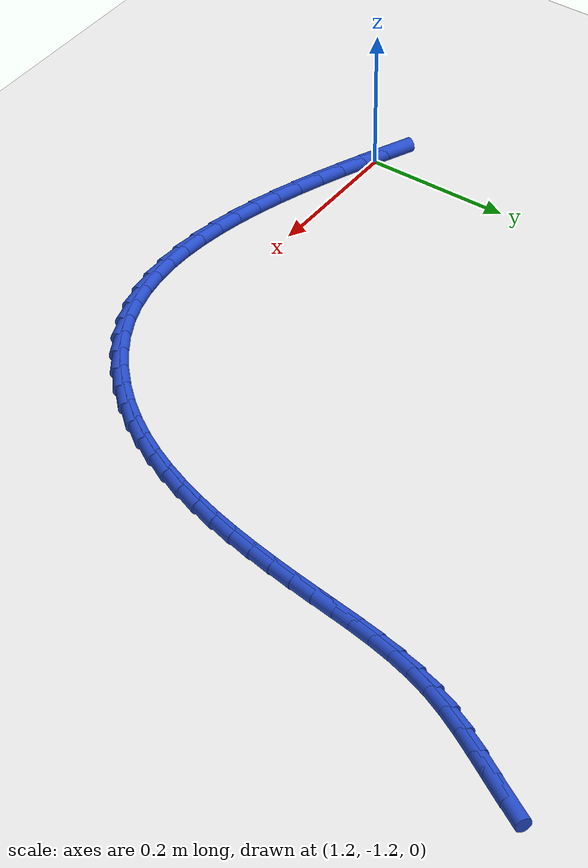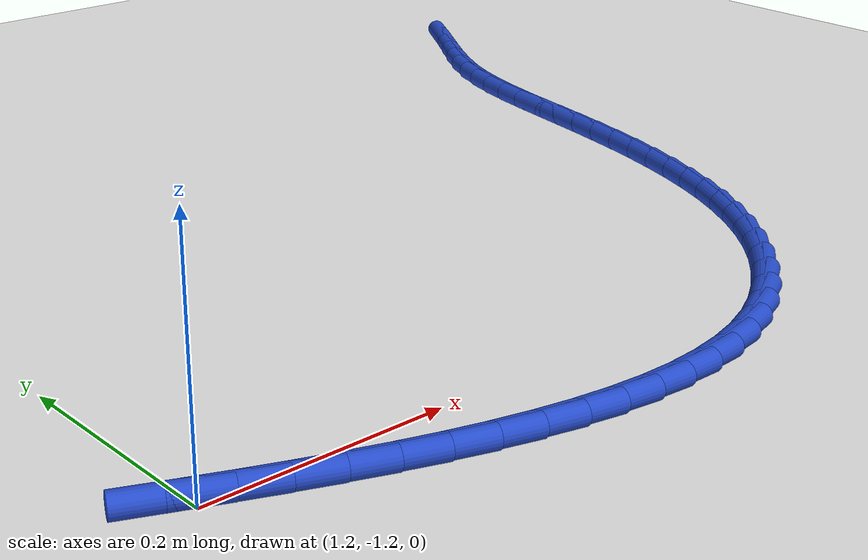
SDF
<sdf version="1.6">
 <world name="default">
  <model name="ground_plane">
   <static>1</static>
   <link name="link">
    <collision name="collision">
     <geometry><plane><normal>0 0 1</normal><size>100 100</size></plane></geometry>
     <surface><friction><ode><mu>100</mu><mu2>50</mu2></ode></friction></surface>
    </collision>
    <visual name="visual">
     <cast_shadows>0</cast_shadows>
     <geometry><plane><normal>0 0 1</normal><size>100 100</size></plane></geometry>
     <material>
      <script><uri>file://media/materials/scripts/gazebo.material</uri><name>Gazebo/WhiteGlow</name></script>
     </material>
    </visual>
   </link>
  </model>
  <model name="line">
   <link name="link_158">
    <pose>2.039934221621376 -0.4716234707720935 0.01 0 1.57 1.0384585593285711</pose>
    <collision name="collision">
     <geometry><cylinder><radius>0.01</radius><length>0.08</length></cylinder></geometry>
    </collision>
    <visual name="visual">
     <material>
      <script><name>Gazebo/Blue</name><uri>file://media/materials/scripts/gazebo.material</uri></script>
     </material>
     <geometry><cylinder><radius>0.01</radius><length>0.08</length></cylinder></geometry>
    </visual>
   </link>
   <link name="link_159">
    <pose>2.0233116332683605 -0.499842229322758 0.01 0 1.57 1.029985353599988</pose>
    <collision name="collision">
     <geometry><cylinder><radius>0.01</radius><length>0.08</length></cylinder></geometry>
    </collision>
    <visual name="visual">
     <material>
      <script><name>Gazebo/Blue</name><uri>file://media/materials/scripts/gazebo.material</uri></script>
     </material>
     <geometry><cylinder><radius>0.01</radius><length>0.08</length></cylinder></geometry>
    </visual>
   </link>
   <link name="link_160">
    <pose>2.0063810568169567 -0.5280348344755731 0.01 0 1.57 1.0430063973662507</pose>
    <collision name="collision">
     <geometry><cylinder><radius>0.01</radius><length>0.08</length></cylinder></geometry>
    </collision>
    <visual name="visual">
     <material>
      <script><name>Gazebo/Blue</name><uri>file://media/materials/scripts/gazebo.material</uri></script>
     </material>
     <geometry><cylinder><radius>0.01</radius><length>0.08</length></cylinder></geometry>
    </visual>
   </link>
   <link name="link_161">
    <pose>1.9898580213761898 -0.5563785637710714 0.01 0 1.57 1.0779066292483557</pose>
    <collision name="collision">
     <geometry><cylinder><radius>0.01</radius><length>0.08</length></cylinder></geometry>
    </collision>
    <visual name="visual">
     <material>
      <script><name>Gazebo/Blue</name><uri>file://media/materials/scripts/gazebo.material</uri></script>
     </material>
     <geometry><cylinder><radius>0.01</radius><length>0.08</length></cylinder></geometry>
    </visual>
   </link>
   <link name="link_162">
    <pose>1.9744580560550857 -0.5850506947497847 0.01 0 1.57 1.1357166406116235</pose>
    <collision name="collision">
     <geometry><cylinder><radius>0.01</radius><length>0.08</length></cylinder></geometry>
    </collision>
    <visual name="visual">
     <material>
      <script><name>Gazebo/Blue</name><uri>file://media/materials/scripts/gazebo.material</uri></script>
     </material>
     <geometry><cylinder><radius>0.01</radius><length>0.08</length></cylinder></geometry>
    </visual>
   </link>
   <link name="link_163">
    <pose>1.9608966899626687 -0.6142285049522452 0.01 0 1.57 1.2132684957488753</pose>
    <collision name="collision">
     <geometry><cylinder><radius>0.01</radius><length>0.08</length></cylinder></geometry>
    </collision>
    <visual name="visual">
     <material>
      <script><name>Gazebo/Blue</name><uri>file://media/materials/scripts/gazebo.material</uri></script>
     </material>
     <geometry><cylinder><radius>0.01</radius><length>0.08</length></cylinder></geometry>
    </visual>
   </link>
   <link name="link_164">
    <pose>1.9497526182156546 -0.6440587444698068 0.01 0 1.57 1.2853362459915973</pose>
    <collision name="collision">
     <geometry><cylinder><radius>0.01</radius><length>0.08</length></cylinder></geometry>
    </collision>
    <visual name="visual">
     <material>
      <script><name>Gazebo/Blue</name><uri>file://media/materials/scripts/gazebo.material</uri></script>
     </material>
     <geometry><cylinder><radius>0.01</radius><length>0.08</length></cylinder></geometry>
    </visual>
   </link>
   <link name="link_165">
    <pose>1.9408153154035388 -0.674512089531414 0.01 0 1.57 1.3417548702891469</pose>
    <collision name="collision">
     <geometry><cylinder><radius>0.01</radius><length>0.08</length></cylinder></geometry>
    </collision>
    <visual name="visual">
     <material>
      <script><name>Gazebo/Blue</name><uri>file://media/materials/scripts/gazebo.material</uri></script>
     </material>
     <geometry><cylinder><radius>0.01</radius><length>0.08</length></cylinder></geometry>
    </visual>
   </link>
   <link name="link_166">
    <pose>1.93359190667567 -0.7054962246485332 0.01 0 1.57 1.382037378139057</pose>
    <collision name="collision">
     <geometry><cylinder><radius>0.01</radius><length>0.08</length></cylinder></geometry>
    </collision>
    <visual name="visual">
     <material>
      <script><name>Gazebo/Blue</name><uri>file://media/materials/scripts/gazebo.material</uri></script>
     </material>
     <geometry><cylinder><radius>0.01</radius><length>0.08</length></cylinder></geometry>
    </visual>
   </link>
   <link name="link_167">
    <pose>1.9275891605112339 -0.7369187547600797 0.01 0 1.57 1.4062430926749108</pose>
    <collision name="collision">
     <geometry><cylinder><radius>0.01</radius><length>0.08</length></cylinder></geometry>
    </collision>
    <visual name="visual">
     <material>
      <script><name>Gazebo/Blue</name><uri>file://media/materials/scripts/gazebo.material</uri></script>
     </material>
     <geometry><cylinder><radius>0.01</radius><length>0.08</length></cylinder></geometry>
    </visual>
   </link>
   <link name="link_168">
    <pose>1.9223138453894153 -0.7686872848049674 0.01 0 1.57 1.4146518487652042</pose>
    <collision name="collision">
     <geometry><cylinder><radius>0.01</radius><length>0.08</length></cylinder></geometry>
    </collision>
    <visual name="visual">
     <material>
      <script><name>Gazebo/Blue</name><uri>file://media/materials/scripts/gazebo.material</uri></script>
     </material>
     <geometry><cylinder><radius>0.01</radius><length>0.08</length></cylinder></geometry>
    </visual>
   </link>
   <link name="link_169">
    <pose>1.9172727297894008 -0.8007094197221108 0.01 0 1.57 1.4085713360748078</pose>
    <collision name="collision">
     <geometry><cylinder><radius>0.01</radius><length>0.08</length></cylinder></geometry>
    </collision>
    <visual name="visual">
     <material>
      <script><name>Gazebo/Blue</name><uri>file://media/materials/scripts/gazebo.material</uri></script>
     </material>
     <geometry><cylinder><radius>0.01</radius><length>0.08</length></cylinder></geometry>
    </visual>
   </link>
   <link name="link_170">
    <pose>1.9120060870018234 -0.8328891772875033 0.01 0 1.57 1.3945276948690786</pose>
    <collision name="collision">
     <geometry><cylinder><radius>0.01</radius><length>0.08</length></cylinder></geometry>
    </collision>
    <visual name="visual">
     <material>
      <script><name>Gazebo/Blue</name><uri>file://media/materials/scripts/gazebo.material</uri></script>
     </material>
     <geometry><cylinder><radius>0.01</radius><length>0.08</length></cylinder></geometry>
    </visual>
   </link>
   <link name="link_171">
    <pose>1.9062674053952695 -0.8651077475939285 0.01 0 1.57 1.3749657926803338</pose>
    <collision name="collision">
     <geometry><cylinder><radius>0.01</radius><length>0.08</length></cylinder></geometry>
    </collision>
    <visual name="visual">
     <material>
      <script><name>Gazebo/Blue</name><uri>file://media/materials/scripts/gazebo.material</uri></script>
     </material>
     <geometry><cylinder><radius>0.01</radius><length>0.08</length></cylinder></geometry>
    </visual>
   </link>
   <link name="link_172">
    <pose>1.8998937592937322 -0.8972373716779911 0.01 0 1.57 1.3497521770058958</pose>
    <collision name="collision">
     <geometry><cylinder><radius>0.01</radius><length>0.08</length></cylinder></geometry>
    </collision>
    <visual name="visual">
     <material>
      <script><name>Gazebo/Blue</name><uri>file://media/materials/scripts/gazebo.material</uri></script>
     </material>
     <geometry><cylinder><radius>0.01</radius><length>0.08</length></cylinder></geometry>
    </visual>
   </link>
   <link name="link_173">
    <pose>1.8927224192178986 -0.9291502695706682 0.01 0 1.57 1.318685162854032</pose>
    <collision name="collision">
     <geometry><cylinder><radius>0.01</radius><length>0.08</length></cylinder></geometry>
    </collision>
    <visual name="visual">
     <material>
      <script><name>Gazebo/Blue</name><uri>file://media/materials/scripts/gazebo.material</uri></script>
     </material>
     <geometry><cylinder><radius>0.01</radius><length>0.08</length></cylinder></geometry>
    </visual>
   </link>
   <link name="link_174">
    <pose>1.8845906556884569 -0.9607186613029396 0.01 0 1.57 1.2815216837795278</pose>
    <collision name="collision">
     <geometry><cylinder><radius>0.01</radius><length>0.08</length></cylinder></geometry>
    </collision>
    <visual name="visual">
     <material>
      <script><name>Gazebo/Blue</name><uri>file://media/materials/scripts/gazebo.material</uri></script>
     </material>
     <geometry><cylinder><radius>0.01</radius><length>0.08</length></cylinder></geometry>
    </visual>
   </link>
   <link name="link_175">
    <pose>1.8753357392260936 -0.9918147669057842 0.01 0 1.57 1.2380066337475282</pose>
    <collision name="collision">
     <geometry><cylinder><radius>0.01</radius><length>0.08</length></cylinder></geometry>
    </collision>
    <visual name="visual">
     <material>
      <script><name>Gazebo/Blue</name><uri>file://media/materials/scripts/gazebo.material</uri></script>
     </material>
     <geometry><cylinder><radius>0.01</radius><length>0.08</length></cylinder></geometry>
    </visual>
   </link>
   <link name="link_176">
    <pose>1.8647949403514963 -1.0223108064101816 0.01 0 1.57 1.1879136813920228</pose>
    <collision name="collision">
     <geometry><cylinder><radius>0.01</radius><length>0.08</length></cylinder></geometry>
    </collision>
    <visual name="visual">
     <material>
      <script><name>Gazebo/Blue</name><uri>file://media/materials/scripts/gazebo.material</uri></script>
     </material>
     <geometry><cylinder><radius>0.01</radius><length>0.08</length></cylinder></geometry>
    </visual>
   </link>
   <link name="link_177">
    <pose>1.852805529585352 -1.0520789998471096 0.01 0 1.57 1.1310999208899721</pose>
    <collision name="collision">
     <geometry><cylinder><radius>0.01</radius><length>0.08</length></cylinder></geometry>
    </collision>
    <visual name="visual">
     <material>
      <script><name>Gazebo/Blue</name><uri>file://media/materials/scripts/gazebo.material</uri></script>
     </material>
     <geometry><cylinder><radius>0.01</radius><length>0.08</length></cylinder></geometry>
    </visual>
   </link>
   <link name="link_178">
    <pose>1.8392047774483484 -1.0809915672475483 0.01 0 1.57 1.0675742756764077</pose>
    <collision name="collision">
     <geometry><cylinder><radius>0.01</radius><length>0.08</length></cylinder></geometry>
    </collision>
    <visual name="visual">
     <material>
      <script><name>Gazebo/Blue</name><uri>file://media/materials/scripts/gazebo.material</uri></script>
     </material>
     <geometry><cylinder><radius>0.01</radius><length>0.08</length></cylinder></geometry>
    </visual>
   </link>
   <link name="link_179">
    <pose>1.8238299544611727 -1.1089207286424758 0.01 0 1.57 0.9975747346602202</pose>
    <collision name="collision">
     <geometry><cylinder><radius>0.01</radius><length>0.08</length></cylinder></geometry>
    </collision>
    <visual name="visual">
     <material>
      <script><name>Gazebo/Blue</name><uri>file://media/materials/scripts/gazebo.material</uri></script>
     </material>
     <geometry><cylinder><radius>0.01</radius><length>0.08</length></cylinder></geometry>
    </visual>
   </link>
   <link name="link_180">
    <pose>1.8065183311445114 -1.1357387040628715 0.01 0 1.57 0.9216422921489428</pose>
    <collision name="collision">
     <geometry><cylinder><radius>0.01</radius><length>0.08</length></cylinder></geometry>
    </collision>
    <visual name="visual">
     <material>
      <script><name>Gazebo/Blue</name><uri>file://media/materials/scripts/gazebo.material</uri></script>
     </material>
     <geometry><cylinder><radius>0.01</radius><length>0.08</length></cylinder></geometry>
    </visual>
   </link>
   <link name="link_181">
    <pose>1.7871071780190526 -1.161317713539715 0.01 0 1.57 0.8412706930812435</pose>
    <collision name="collision">
     <geometry><cylinder><radius>0.01</radius><length>0.08</length></cylinder></geometry>
    </collision>
    <visual name="visual">
     <material>
      <script><name>Gazebo/Blue</name><uri>file://media/materials/scripts/gazebo.material</uri></script>
     </material>
     <geometry><cylinder><radius>0.01</radius><length>0.08</length></cylinder></geometry>
    </visual>
   </link>
   <link name="link_182">
    <pose>1.7654990416066625 -1.185486168693979 0.01 0 1.57 0.7590140093013343</pose>
    <collision name="collision">
     <geometry><cylinder><radius>0.01</radius><length>0.08</length></cylinder></geometry>
    </collision>
    <visual name="visual">
     <material>
      <script><name>Gazebo/Blue</name><uri>file://media/materials/scripts/gazebo.material</uri></script>
     </material>
     <geometry><cylinder><radius>0.01</radius><length>0.08</length></cylinder></geometry>
    </visual>
   </link>
   <link name="link_183">
    <pose>1.741910424464681 -1.2078617771439824 0.01 0 1.57 0.6730619281636229</pose>
    <collision name="collision">
     <geometry><cylinder><radius>0.01</radius><length>0.08</length></cylinder></geometry>
    </collision>
    <visual name="visual">
     <material>
      <script><name>Gazebo/Blue</name><uri>file://media/materials/scripts/gazebo.material</uri></script>
     </material>
     <geometry><cylinder><radius>0.01</radius><length>0.08</length></cylinder></geometry>
    </visual>
   </link>
   <link name="link_184">
    <pose>1.7166521011566445 -1.2279989781303111 0.01 0 1.57 0.580379660688692</pose>
    <collision name="collision">
     <geometry><cylinder><radius>0.01</radius><length>0.08</length></cylinder></geometry>
    </collision>
    <visual name="visual">
     <material>
      <script><name>Gazebo/Blue</name><uri>file://media/materials/scripts/gazebo.material</uri></script>
     </material>
     <geometry><cylinder><radius>0.01</radius><length>0.08</length></cylinder></geometry>
    </visual>
   </link>
   <link name="link_185">
    <pose>1.6900348644353929 -1.2454521986862397 0.01 0 1.57 0.47793678672953915</pose>
    <collision name="collision">
     <geometry><cylinder><radius>0.01</radius><length>0.08</length></cylinder></geometry>
    </collision>
    <visual name="visual">
     <material>
      <script><name>Gazebo/Blue</name><uri>file://media/materials/scripts/gazebo.material</uri></script>
     </material>
     <geometry><cylinder><radius>0.01</radius><length>0.08</length></cylinder></geometry>
    </visual>
   </link>
   <link name="link_186">
    <pose>1.662366437498009 -1.2597842013718006 0.01 0 1.57 0.3697825486021379</pose>
    <collision name="collision">
     <geometry><cylinder><radius>0.01</radius><length>0.08</length></cylinder></geometry>
    </collision>
    <visual name="visual">
     <material>
      <script><name>Gazebo/Blue</name><uri>file://media/materials/scripts/gazebo.material</uri></script>
     </material>
     <geometry><cylinder><radius>0.01</radius><length>0.08</length></cylinder></geometry>
    </visual>
   </link>
   <link name="link_187">
    <pose>1.6338517603551157 -1.2708368614488448 0.01 0 1.57 0.26523758088142896</pose>
    <collision name="collision">
     <geometry><cylinder><radius>0.01</radius><length>0.08</length></cylinder></geometry>
    </collision>
    <visual name="visual">
     <material>
      <script><name>Gazebo/Blue</name><uri>file://media/materials/scripts/gazebo.material</uri></script>
     </material>
     <geometry><cylinder><radius>0.01</radius><length>0.08</length></cylinder></geometry>
    </visual>
   </link>
   <link name="link_188">
    <pose>1.6045711076013949 -1.278790589130961 0.01 0 1.57 0.1670931761557716</pose>
    <collision name="collision">
     <geometry><cylinder><radius>0.01</radius><length>0.08</length></cylinder></geometry>
    </collision>
    <visual name="visual">
     <material>
      <script><name>Gazebo/Blue</name><uri>file://media/materials/scripts/gazebo.material</uri></script>
     </material>
     <geometry><cylinder><radius>0.01</radius><length>0.08</length></cylinder></geometry>
    </visual>
   </link>
   <link name="link_189">
    <pose>1.5745972566577031 -1.2838461535689751 0.01 0 1.57 0.07692671579251806</pose>
    <collision name="collision">
     <geometry><cylinder><radius>0.01</radius><length>0.08</length></cylinder></geometry>
    </collision>
    <visual name="visual">
     <material>
      <script><name>Gazebo/Blue</name><uri>file://media/materials/scripts/gazebo.material</uri></script>
     </material>
     <geometry><cylinder><radius>0.01</radius><length>0.08</length></cylinder></geometry>
    </visual>
   </link>
   <link name="link_190">
    <pose>1.5440029849448973 -1.2862043239137146 0.01 0 1.57 -0.0044458950326783445</pose>
    <collision name="collision">
     <geometry><cylinder><radius>0.01</radius><length>0.08</length></cylinder></geometry>
    </collision>
    <visual name="visual">
     <material>
      <script><name>Gazebo/Blue</name><uri>file://media/materials/scripts/gazebo.material</uri></script>
     </material>
     <geometry><cylinder><radius>0.01</radius><length>0.08</length></cylinder></geometry>
    </visual>
   </link>
   <link name="link_191">
    <pose>1.5128610698838332 -1.286065869316005 0.01 0 1.57 -0.07684264685934991</pose>
    <collision name="collision">
     <geometry><cylinder><radius>0.01</radius><length>0.08</length></cylinder></geometry>
    </collision>
    <visual name="visual">
     <material>
      <script><name>Gazebo/Blue</name><uri>file://media/materials/scripts/gazebo.material</uri></script>
     </material>
     <geometry><cylinder><radius>0.01</radius><length>0.08</length></cylinder></geometry>
    </visual>
   </link>
   <link name="link_192">
    <pose>1.4812442888953674 -1.2836315589266734 0.01 0 1.57 -0.14052782493033328</pose>
    <collision name="collision">
     <geometry><cylinder><radius>0.01</radius><length>0.08</length></cylinder></geometry>
    </collision>
    <visual name="visual">
     <material>
      <script><name>Gazebo/Blue</name><uri>file://media/materials/scripts/gazebo.material</uri></script>
     </material>
     <geometry><cylinder><radius>0.01</radius><length>0.08</length></cylinder></geometry>
    </visual>
   </link>
   <link name="link_193">
    <pose>1.4492254194003567 -1.2791021618965466 0.01 0 1.57 -0.19603018441564954</pose>
    <collision name="collision">
     <geometry><cylinder><radius>0.01</radius><length>0.08</length></cylinder></geometry>
    </collision>
    <visual name="visual">
     <material>
      <script><name>Gazebo/Blue</name><uri>file://media/materials/scripts/gazebo.material</uri></script>
     </material>
     <geometry><cylinder><radius>0.01</radius><length>0.08</length></cylinder></geometry>
    </visual>
   </link>
   <link name="link_194">
    <pose>1.416877238819657 -1.2726784473764505 0.01 0 1.57 -0.24399940396059258</pose>
    <collision name="collision">
     <geometry><cylinder><radius>0.01</radius><length>0.08</length></cylinder></geometry>
    </collision>
    <visual name="visual">
     <material>
      <script><name>Gazebo/Blue</name><uri>file://media/materials/scripts/gazebo.material</uri></script>
     </material>
     <geometry><cylinder><radius>0.01</radius><length>0.08</length></cylinder></geometry>
    </visual>
   </link>
   <link name="link_195">
    <pose>1.384272524574125 -1.2645611845172122 0.01 0 1.57 -0.28510729522169975</pose>
    <collision name="collision">
     <geometry><cylinder><radius>0.01</radius><length>0.08</length></cylinder></geometry>
    </collision>
    <visual name="visual">
     <material>
      <script><name>Gazebo/Blue</name><uri>file://media/materials/scripts/gazebo.material</uri></script>
     </material>
     <geometry><cylinder><radius>0.01</radius><length>0.08</length></cylinder></geometry>
    </visual>
   </link>
   <link name="link_196">
    <pose>1.3514840540846174 -1.2549511424696584 0.01 0 1.57 -0.31998693987466165</pose>
    <collision name="collision">
     <geometry><cylinder><radius>0.01</radius><length>0.08</length></cylinder></geometry>
    </collision>
    <visual name="visual">
     <material>
      <script><name>Gazebo/Blue</name><uri>file://media/materials/scripts/gazebo.material</uri></script>
     </material>
     <geometry><cylinder><radius>0.01</radius><length>0.08</length></cylinder></geometry>
    </visual>
   </link>
   <link name="link_197">
    <pose>1.3185846047719891 -1.2440490903846149 0.01 0 1.57 -0.3491990446315953</pose>
    <collision name="collision">
     <geometry><cylinder><radius>0.01</radius><length>0.08</length></cylinder></geometry>
    </collision>
    <visual name="visual">
     <material>
      <script><name>Gazebo/Blue</name><uri>file://media/materials/scripts/gazebo.material</uri></script>
     </material>
     <geometry><cylinder><radius>0.01</radius><length>0.08</length></cylinder></geometry>
    </visual>
   </link>
   <link name="link_198">
    <pose>1.2856469540570992 -1.232055797412909 0.01 0 1.57 -0.3732156470851511</pose>
    <collision name="collision">
     <geometry><cylinder><radius>0.01</radius><length>0.08</length></cylinder></geometry>
    </collision>
    <visual name="visual">
     <material>
      <script><name>Gazebo/Blue</name><uri>file://media/materials/scripts/gazebo.material</uri></script>
     </material>
     <geometry><cylinder><radius>0.01</radius><length>0.08</length></cylinder></geometry>
    </visual>
   </link>
   <link name="link_199">
    <pose>1.2527438793608028 -1.2191720327053672 0.01 0 1.57 -0.392413662639619</pose>
    <collision name="collision">
     <geometry><cylinder><radius>0.01</radius><length>0.08</length></cylinder></geometry>
    </collision>
    <visual name="visual">
     <material>
      <script><name>Gazebo/Blue</name><uri>file://media/materials/scripts/gazebo.material</uri></script>
     </material>
     <geometry><cylinder><radius>0.01</radius><length>0.08</length></cylinder></geometry>
    </visual>
   </link>
   <link name="link_200">
    <pose>1.2199481581039564 -1.205598565412816 0.01 0 1.57 -0.4070730837204434</pose>
    <collision name="collision">
     <geometry><cylinder><radius>0.01</radius><length>0.08</length></cylinder></geometry>
    </collision>
    <visual name="visual">
     <material>
      <script><name>Gazebo/Blue</name><uri>file://media/materials/scripts/gazebo.material</uri></script>
     </material>
     <geometry><cylinder><radius>0.01</radius><length>0.08</length></cylinder></geometry>
    </visual>
   </link>
   <link name="link_201">
    <pose>1.1873325677074162 -1.1915361646860818 0.01 0 1.57 -0.4173685328185876</pose>
    <collision name="collision">
     <geometry><cylinder><radius>0.01</radius><length>0.08</length></cylinder></geometry>
    </collision>
    <visual name="visual">
     <material>
      <script><name>Gazebo/Blue</name><uri>file://media/materials/scripts/gazebo.material</uri></script>
     </material>
     <geometry><cylinder><radius>0.01</radius><length>0.08</length></cylinder></geometry>
    </visual>
   </link>
  </model>
 </world>
</sdf>
